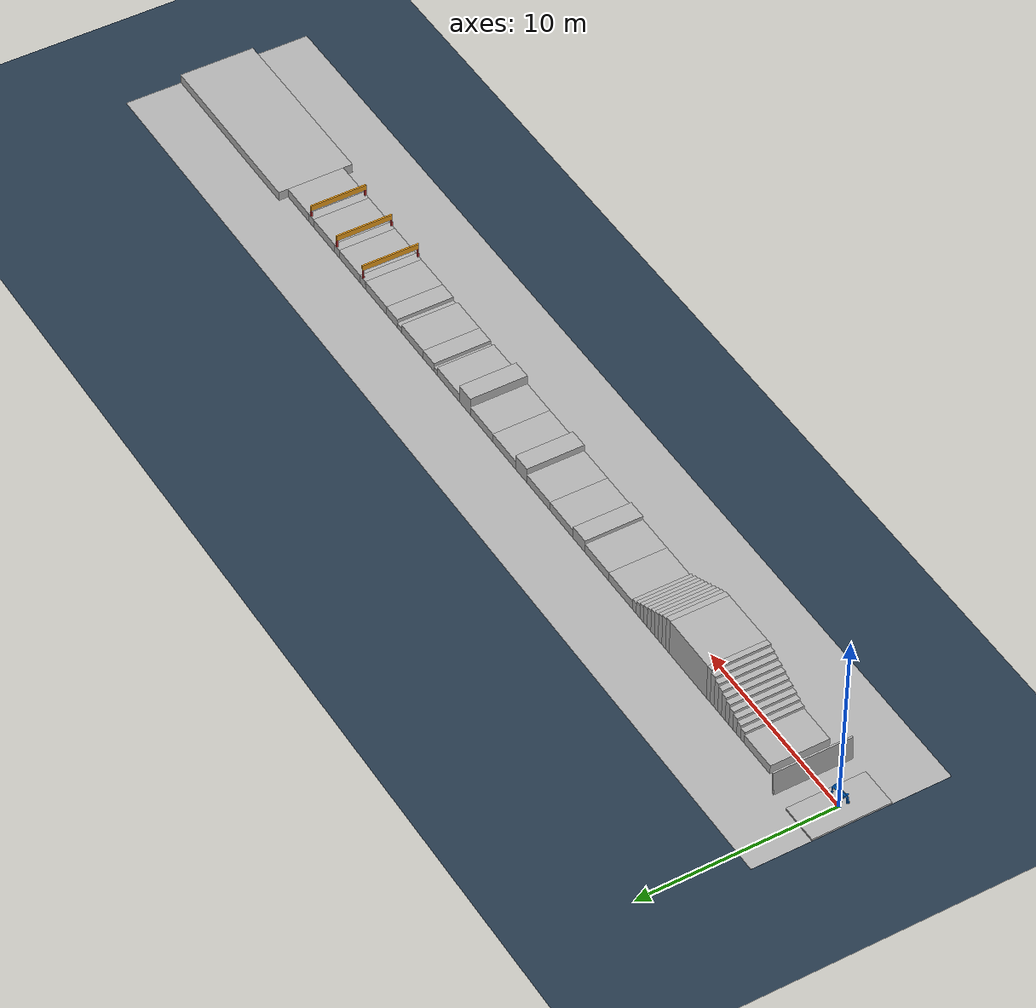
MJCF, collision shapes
<mujoco model="M20">

    <default>
        <default class="robot">
            <default class="motor">
                <joint />
                <motor />
            </default>
            <default class="visual">
                <geom material="default_material" contype="0" conaffinity="0" group="2" />
            </default>
            <default class="collision">
                <geom material="collision_material" condim="3" contype="1" conaffinity="1" solref="0.005 1" friction="1 0.01 0.001" density="0" group="1" />
                </default>
        </default>
    </default>

    <compiler angle="radian" meshdir="../meshes/" />
    <compiler autolimits="true" />

    <asset>
        <material name="default_material" rgba="0.7 0.7 0.7 1" />
        <material name="collision_material" rgba="0.0 0.4 0.8 0.2" />
        <mesh name="base_link" file="base_link.STL" />
        <mesh name="fl_hipx" file="fl_hipx.STL" />
        <mesh name="fl_hipy" file="fl_hipy.STL" />
        <mesh name="fl_knee" file="fl_knee.STL" />
        <mesh name="fl_wheel" file="fl_wheel.STL" />
        <mesh name="fr_hipx" file="fr_hipx.STL" />
        <mesh name="fr_hipy" file="fr_hipy.STL" />
        <mesh name="fr_knee" file="fr_knee.STL" />
        <mesh name="fr_wheel" file="fr_wheel.STL" />
        <mesh name="hl_hipx" file="hl_hipx.STL" />
        <mesh name="hl_hipy" file="hl_hipy.STL" />
        <mesh name="hl_knee" file="hl_knee.STL" />
        <mesh name="hl_wheel" file="hl_wheel.STL" />
        <mesh name="hr_hipx" file="hr_hipx.STL" />
        <mesh name="hr_hipy" file="hr_hipy.STL" />
        <mesh name="hr_knee" file="hr_knee.STL" />
        <mesh name="hr_wheel" file="hr_wheel.STL" />
        <texture name="texplane" type="2d" builtin="checker" rgb1=".2 .3 .4" rgb2=".1 0.15 0.2" width="512" height="512" />
        <material name="MatPlane" reflectance="0.3" texture="texplane" texrepeat="1 1" texuniform="true" />
    <texture type="skybox" builtin="gradient" rgb1="0.3 0.5 0.7" rgb2="0 0 0" width="512" height="307" />
    <texture name="grid" type="2d" builtin="checker" width="512" height="512" rgb1=".1 .2 .3" rgb2=".2 .3 .4" />
    <material name="grid_mat" texture="grid" texrepeat="1 1" texuniform="true" reflectance=".2" />
    <material name="stone_mat" rgba="0.7 0.7 0.7 1" />
    <material name="rail_mat" rgba="0.8 0.2 0.2 1" />
    <material name="box_mat" rgba="0.3 0.8 0.3 1" />
    <material name="ring_mat" rgba="0.9 0.6 0.1 1" />
  </asset>

    <worldbody>
        <light directional="true" pos="-0.5 0.5 3" dir="0 0 -1" />
        <geom name="floor" pos="0 0 0" size="100 100 .125" type="plane" material="MatPlane" condim="3" friction="1 0.01 0.01" group="0" />

        <body name="base_link" pos="0 0. 1." quat="1 0 0 0" childclass="robot">
            <freejoint name="floating_base" />
            <inertial pos="0.00355105878308153 0.0016507579200937 -0.00346462146571654" quat="1 0 0 0" mass="15.882" diaginertia="0.087919 0.533522 0.563492" />

            <site name="imu_site" pos="0.0632 -0.0268 0.0435" size="0.005" rgba="1 0 0 1" />
            <site name="base_site" pos="0 0 0" quat="1 0 0 0" />

            <site name="lidar_site_front" pos="0.32028 0 -0.013" quat="0 0 0 1" rgba="1 0 0 1" size="0.01" />

            <site name="lidar_site_rear" pos="-0.32028 0 -0.013" quat="1 0 0 0" rgba="0 1 0 1" size="0.01" />

            <geom type="mesh" mesh="base_link" class="visual" />
            <geom size="0.375 0.045 0.07" type="box" class="collision" />
            <geom size="0.07 0.375" pos="0 0.045 0" quat="0.707107 0 0.707107 0" type="cylinder" class="collision" />
            <geom size="0.07 0.375" pos="0 -0.045 0" quat="0.707107 0 0.707107 0" type="cylinder" class="collision" />

            <body name="fl_hipx" pos="0.3141 0.0685 0">
                <inertial pos="-0.0111893 0.00891693 0.000405666" quat="0.581628 0.481707 0.465607 0.461387" mass="0.259964" diaginertia="0.000374402 0.000286289 0.000179309" />
                <joint name="fl_hipx_joint" pos="0 0 0" axis="-1 0 0" range="-0.436 0.611" actuatorfrcrange="-76.4 76.4" />
                <geom type="mesh" mesh="fl_hipx" class="visual" />
                <geom size="0.048 0.07" pos="0 0.055 0" quat="0.707107 0.707107 0 0" type="cylinder" class="collision" />
                <body name="fl_hipy">
                    <inertial pos="-0.00199375 0.098439 -0.130664" quat="0.6754 -0.0565887 0.0622156 0.73264" mass="2.618" diaginertia="0.0410181 0.0408067 0.00297328" />
                    <joint name="fl_hipy_joint" pos="0 0 0" axis="0 -1 0" range="-2.286 2.583" actuatorfrcrange="-76.4 76.4" />
                    <geom type="mesh" mesh="fl_hipy" class="visual" />
                    <geom size="0.035 0.01 0.125" pos="-0.01 0.11 -0.125" type="box" class="collision" />
                    <geom size="0.05 0.045" pos="0 0.11 -0.25" quat="0.707107 0.707107 0 0" type="cylinder" class="collision" />
                    <body name="fl_knee" pos="0 0.0984 -0.25">
                        <inertial pos="0.00341917 0.00269124 -0.181265" quat="0.633405 -0.0508555 0.0475887 0.77068" mass="1.145" diaginertia="0.0121304 0.0117245 0.000948105" />
                        <joint name="fl_knee_joint" pos="0 0 0" axis="0 -1 0" range="-2.809 2.792" actuatorfrcrange="-76.4 76.4" />
                        <geom type="mesh" mesh="fl_knee" class="visual" />
                        <geom size="0.03 0.0125 0.125" pos="0.015 -0.015 -0.125" type="box" class="collision" />
                        <geom size="0.04 0.05" pos="0 0.02 -0.25" quat="0.707107 0.707107 0 0" type="cylinder" class="collision" />
                        <body name="fl_wheel" pos="0 0.059676 -0.25">
                            <inertial pos="-3.11398e-07 0.000279002 5.70329e-07" quat="0.707107 0 0 0.707107" mass="0.638" diaginertia="0.002853 0.001535 0.001535" />
                            <joint name="fl_wheel_joint" pos="0 0 0" axis="0 -1 0" actuatorfrcrange="-21.6 21.6" />
                            <geom type="mesh" mesh="fl_wheel" class="visual" />
                            <geom size="0.09 0.027" quat="0.707107 0.707107 0 0" type="cylinder" class="collision" />
                        </body>
                    </body>
                </body>
            </body>
            <body name="fr_hipx" pos="0.3141 -0.0685 0">
                <inertial pos="-0.0110901 -0.00875035 0.000521421" quat="0.461387 0.465607 0.481707 0.581628" mass="0.259964" diaginertia="0.000374402 0.000286289 0.000179309" />
                <joint name="fr_hipx_joint" pos="0 0 0" axis="-1 0 0" range="-0.611 0.436" actuatorfrcrange="-76.4 76.4" />
                <geom type="mesh" mesh="fr_hipx" class="visual" />
                <geom size="0.048 0.07" pos="0 -0.055 0" quat="0.707107 0.707107 0 0" type="cylinder" class="collision" />
                <body name="fr_hipy">
                    <inertial pos="-0.00229992 -0.0989709 -0.130925" quat="0.6964 0.0586688 -0.0587886 0.712831" mass="2.618" diaginertia="0.0407542 0.040538 0.00301281" />
                    <joint name="fr_hipy_joint" pos="0 0 0" axis="0 -1 0" range="-2.286 2.583" actuatorfrcrange="-76.4 76.4" />
                    <geom type="mesh" mesh="fr_hipy" class="visual" />
                    <geom size="0.035 0.01 0.125" pos="-0.01 -0.11 -0.125" type="box" class="collision" />
                    <geom size="0.05 0.045" pos="0 -0.11 -0.25" quat="0.707107 0.707107 0 0" type="cylinder" class="collision" />
                    <body name="fr_knee" pos="0 -0.0984 -0.25">
                        <inertial pos="0.00354945 -0.00247884 -0.180089" quat="0.769194 0.0472982 -0.0504711 0.635261" mass="1.145" diaginertia="0.0122564 0.0118448 0.000951718" />
                        <joint name="fr_knee_joint" pos="0 0 0" axis="0 -1 0" range="-2.809 2.792" actuatorfrcrange="-76.4 76.4" />
                        <geom type="mesh" mesh="fr_knee" class="visual" />
                        <geom size="0.03 0.0125 0.125" pos="0.015 0.015 -0.125" type="box" class="collision" />
                        <geom size="0.04 0.05" pos="0 -0.02 -0.25" quat="0.707107 0.707107 0 0" type="cylinder" class="collision" />
                        <body name="fr_wheel" pos="0 -0.059676 -0.25">
                            <inertial pos="-6.47327e-07 -0.000279012 -4.6242e-08" quat="0.707107 0 0 0.707107" mass="0.638" diaginertia="0.002853 0.001535 0.001535" />
                            <joint name="fr_wheel_joint" pos="0 0 0" axis="0 -1 0" actuatorfrcrange="-21.6 21.6" />
                            <geom type="mesh" mesh="fr_wheel" class="visual" />
                            <geom size="0.09 0.027" quat="0.707107 0.707107 0 0" type="cylinder" class="collision" />
                        </body>
                    </body>
                </body>
            </body>
            <body name="hl_hipx" pos="-0.3141 0.0685 0">
                <inertial pos="0.0110901 0.00875014 0.000524884" quat="0.465607 0.461387 0.581628 0.481707" mass="0.259964" diaginertia="0.000374402 0.000286289 0.000179309" />
                <joint name="hl_hipx_joint" pos="0 0 0" axis="-1 0 0" range="-0.436 0.611" actuatorfrcrange="-76.4 76.4" />
                <geom type="mesh" mesh="hl_hipx" class="visual" />
                <geom size="0.048 0.07" pos="0 0.055 0" quat="0.707107 0.707107 0 0" type="cylinder" class="collision" />
                <body name="hl_hipy">
                    <inertial pos="0.00204343 0.0990227 -0.130697" quat="0.750359 -0.0628584 0.0546506 0.655761" mass="2.618" diaginertia="0.0408376 0.0406211 0.00299727" />
                    <joint name="hl_hipy_joint" pos="0 0 0" axis="0 -1 0" range="-2.583 2.286" actuatorfrcrange="-76.4 76.4" />
                    <geom type="mesh" mesh="hl_hipy" class="visual" />
                    <geom size="0.035 0.01 0.125" pos="0.01 0.11 -0.125" type="box" class="collision" />
                    <geom size="0.05 0.045" pos="0 0.11 -0.25" quat="0.707107 0.707107 0 0" type="cylinder" class="collision" />
                    <body name="hl_knee" pos="0 0.0984 -0.25">
                        <inertial pos="-0.00354945 0.00247885 -0.180089" quat="0.769194 -0.0472982 0.0504711 0.635261" mass="1.145" diaginertia="0.0122564 0.0118448 0.000951718" />
                        <joint name="hl_knee_joint" pos="0 0 0" axis="0 -1 0" range="-2.792 2.809" actuatorfrcrange="-76.4 76.4" />
                        <geom type="mesh" mesh="hl_knee" class="visual" />
                        <geom size="0.03 0.0125 0.125" pos="-0.015 0.015 -0.125" type="box" class="collision" />
                        <geom size="0.04 0.05" pos="0 0.02 -0.25" quat="0.707107 0.707107 0 0" type="cylinder" class="collision" />
                        <body name="hl_wheel" pos="0 0.059676 -0.25">
                            <inertial pos="-6.07889e-07 0.000279009 2.1049e-07" quat="0.707107 0 0 0.707107" mass="0.638" diaginertia="0.002853 0.001535 0.001535" />
                            <joint name="hl_wheel_joint" pos="0 0 0" axis="0 -1 0" actuatorfrcrange="-21.6 21.6" />
                            <geom type="mesh" mesh="hl_wheel" class="visual" />
                            <geom size="0.09 0.027" quat="0.707107 0.707107 0 0" type="cylinder" class="collision" />
                        </body>
                    </body>
                </body>
            </body>
            <body name="hr_hipx" pos="-0.3141 -0.0685 0">
                <inertial pos="0.0110902 -0.00875012 0.000524937" quat="0.481707 0.581628 0.461387 0.465607" mass="0.259964" diaginertia="0.000374402 0.000286289 0.000179309" />
                <joint name="hr_hipx_joint" pos="0 0 0" axis="-1 0 0" range="-0.611 0.436" actuatorfrcrange="-76.4 76.4" />
                <geom type="mesh" mesh="hr_hipx" class="visual" />
                <geom size="0.048 0.07" pos="0 -0.055 0" quat="0.707107 0.707107 0 0" type="cylinder" class="collision" />
                <body name="hr_hipy">
                    <inertial pos="0.001992 -0.0983704 -0.130561" quat="0.676694 0.0567616 -0.0621797 0.731435" mass="2.618" diaginertia="0.0410109 0.0408028 0.00297526" />
                    <joint name="hr_hipy_joint" pos="0 0 0" axis="0 -1 0" range="-2.583 2.286" actuatorfrcrange="-76.4 76.4" />
                    <geom type="mesh" mesh="hr_hipy" class="visual" />
                    <geom size="0.035 0.01 0.125" pos="0.01 -0.11 -0.125" type="box" class="collision" />
                    <geom size="0.05 0.045" pos="0 -0.11 -0.25" quat="0.707107 0.707107 0 0" type="cylinder" class="collision" />
                    <body name="hr_knee" pos="0 -0.0984 -0.25">
                        <inertial pos="-0.00341053 -0.00270202 -0.181287" quat="0.63448 0.050937 -0.0475303 0.769793" mass="1.145" diaginertia="0.0121352 0.0117289 0.000948904" />
                        <joint name="hr_knee_joint" pos="0 0 0" axis="0 -1 0" range="-2.792 2.809" actuatorfrcrange="-76.4 76.4" />
                        <geom type="mesh" mesh="hr_knee" class="visual" />
                        <geom size="0.03 0.0125 0.125" pos="-0.015 0.015 -0.125" type="box" class="collision" />
                        <geom size="0.04 0.05" pos="0 -0.02 -0.25" quat="0.707107 0.707107 0 0" type="cylinder" class="collision" />
                        <body name="hr_wheel" pos="0 -0.059676 -0.25">
                            <inertial pos="6.09746e-07 -0.000279009 2.01314e-07" quat="0.707107 0 0 0.707107" mass="0.638" diaginertia="0.002853 0.001535 0.001535" />
                            <joint name="hr_wheel_joint" pos="0 0 0" axis="0 -1 0" actuatorfrcrange="-21.6 21.6" />
                            <geom type="mesh" mesh="hr_wheel" class="visual" />
                            <geom size="0.09 0.027" quat="0.707107 0.707107 0 0" type="cylinder" class="collision" />
                        </body>
                    </body>
                </body>
            </body>
        </body>
    <geom name="abyss_floor" type="plane" size="0 0 0.05" pos="0 0 -5.0" material="grid_mat" condim="3" />
    <geom type="box" pos="0 0 0.060" size="1.0 2.0 0.05" material="stone_mat" name="start_platform" />
    <geom type="box" pos="2.000 0.0 0.210" size="1.031 2.0 0.05" euler="0 -14.036 0" material="stone_mat" name="start_ramp" />
    <geom type="box" pos="4.000 0.0 0.260" size="1.000 1.500 0.250" material="stone_mat" />
    <geom type="box" pos="5.150 0.0 -0.415" size="0.150 1.500 1.075" material="stone_mat" />
    <geom type="box" pos="5.450 0.0 -0.340" size="0.150 1.500 1.150" material="stone_mat" />
    <geom type="box" pos="5.750 0.0 -0.265" size="0.150 1.500 1.225" material="stone_mat" />
    <geom type="box" pos="6.050 0.0 -0.190" size="0.150 1.500 1.300" material="stone_mat" />
    <geom type="box" pos="6.350 0.0 -0.115" size="0.150 1.500 1.375" material="stone_mat" />
    <geom type="box" pos="6.650 0.0 -0.040" size="0.150 1.500 1.450" material="stone_mat" />
    <geom type="box" pos="6.950 0.0 0.035" size="0.150 1.500 1.525" material="stone_mat" />
    <geom type="box" pos="7.250 0.0 0.110" size="0.150 1.500 1.600" material="stone_mat" />
    <geom type="box" pos="7.550 0.0 0.185" size="0.150 1.500 1.675" material="stone_mat" />
    <geom type="box" pos="7.850 0.0 0.260" size="0.150 1.500 1.750" material="stone_mat" />
    <geom type="box" pos="9.500 0.0 0.260" size="1.500 1.500 1.750" material="stone_mat" />
    <geom type="box" pos="11.150 0.0 0.260" size="0.150 1.500 1.750" material="stone_mat" />
    <geom type="box" pos="11.450 0.0 0.185" size="0.150 1.500 1.675" material="stone_mat" />
    <geom type="box" pos="11.750 0.0 0.110" size="0.150 1.500 1.600" material="stone_mat" />
    <geom type="box" pos="12.050 0.0 0.035" size="0.150 1.500 1.525" material="stone_mat" />
    <geom type="box" pos="12.350 0.0 -0.040" size="0.150 1.500 1.450" material="stone_mat" />
    <geom type="box" pos="12.650 0.0 -0.115" size="0.150 1.500 1.375" material="stone_mat" />
    <geom type="box" pos="12.950 0.0 -0.190" size="0.150 1.500 1.300" material="stone_mat" />
    <geom type="box" pos="13.250 0.0 -0.265" size="0.150 1.500 1.225" material="stone_mat" />
    <geom type="box" pos="13.550 0.0 -0.340" size="0.150 1.500 1.150" material="stone_mat" />
    <geom type="box" pos="13.850 0.0 -0.415" size="0.150 1.500 1.075" material="stone_mat" />
    <geom type="box" pos="15.000 0.0 0.260" size="1.000 1.500 0.250" material="stone_mat" />
    <geom type="box" pos="17.000 0.0 0.260" size="1.000 1.500 0.250" material="stone_mat" />
    <geom type="box" pos="18.500 0.0 0.360" size="0.500 1.500 0.350" material="stone_mat" />
    <geom type="box" pos="20.000 0.0 0.260" size="1.000 1.500 0.250" material="stone_mat" />
    <geom type="box" pos="22.000 0.0 0.260" size="1.000 1.500 0.250" material="stone_mat" />
    <geom type="box" pos="23.500 0.0 0.435" size="0.500 1.500 0.425" material="stone_mat" />
    <geom type="box" pos="25.000 0.0 0.260" size="1.000 1.500 0.250" material="stone_mat" />
    <geom type="box" pos="27.000 0.0 0.260" size="1.000 1.500 0.250" material="stone_mat" />
    <geom type="box" pos="28.500 0.0 0.510" size="0.500 1.500 0.500" material="stone_mat" />
    <geom type="box" pos="30.000 0.0 0.260" size="1.000 1.500 0.250" material="stone_mat" />
    <geom type="box" pos="31.150 0.0 0.155" size="0.150 1.500 0.155" material="stone_mat" />
    <geom type="box" pos="31.800 0.0 0.255" size="0.500 1.500 0.255" material="stone_mat" />
    <geom type="box" pos="33.300 0.0 0.260" size="1.000 1.500 0.250" material="stone_mat" />
    <geom type="box" pos="34.500 0.0 0.155" size="0.200 1.500 0.155" material="stone_mat" />
    <geom type="box" pos="35.200 0.0 0.255" size="0.500 1.500 0.255" material="stone_mat" />
    <geom type="box" pos="36.700 0.0 0.260" size="1.000 1.500 0.250" material="stone_mat" />
    <geom type="box" pos="37.950 0.0 0.260" size="0.250 1.500 0.250" material="stone_mat" />
    <geom type="box" pos="37.950 1.460 0.760" size="0.040 0.040 0.250" material="rail_mat" />
    <geom type="box" pos="37.950 -1.460 0.760" size="0.040 0.040 0.250" material="rail_mat" />
    <geom type="box" pos="37.950 0.0 1.160" size="0.040 1.500 0.150" material="ring_mat" />
    <geom type="box" pos="39.200 0.0 0.260" size="1.000 1.500 0.250" material="stone_mat" />
    <geom type="box" pos="40.450 0.0 0.260" size="0.250 1.500 0.250" material="stone_mat" />
    <geom type="box" pos="40.450 1.460 0.710" size="0.040 0.040 0.200" material="rail_mat" />
    <geom type="box" pos="40.450 -1.460 0.710" size="0.040 0.040 0.200" material="rail_mat" />
    <geom type="box" pos="40.450 0.0 1.060" size="0.040 1.500 0.150" material="ring_mat" />
    <geom type="box" pos="41.700 0.0 0.260" size="1.000 1.500 0.250" material="stone_mat" />
    <geom type="box" pos="42.950 0.0 0.260" size="0.250 1.500 0.250" material="stone_mat" />
    <geom type="box" pos="42.950 1.460 0.685" size="0.040 0.040 0.175" material="rail_mat" />
    <geom type="box" pos="42.950 -1.460 0.685" size="0.040 0.040 0.175" material="rail_mat" />
    <geom type="box" pos="42.950 0.0 1.010" size="0.040 1.500 0.150" material="ring_mat" />
    <geom type="box" pos="44.200 0.0 0.260" size="1.000 1.500 0.250" material="stone_mat" />
    <geom type="box" pos="50.200 0.0 0.260" size="5.0 2.0 0.250" material="stone_mat" />
    <geom type="box" pos="27.100 0.0 0.005" size="28.100 5.0 0.005" material="stone_mat" name="unified_floor" />
  </worldbody>

    <actuator>
        <motor name="fl_hipx_joint" joint="fl_hipx_joint" ctrllimited="true" ctrlrange="-76.4 76.4" gear="1" />
        <motor name="fl_hipy_joint" joint="fl_hipy_joint" ctrllimited="true" ctrlrange="-76.4 76.4" gear="1" />
        <motor name="fl_knee_joint" joint="fl_knee_joint" ctrllimited="true" ctrlrange="-76.4 76.4" gear="1" />
        <motor name="fl_wheel_joint" joint="fl_wheel_joint" ctrllimited="true" ctrlrange="-21.6 21.6" gear="1" />
        <motor name="fr_hipx_joint" joint="fr_hipx_joint" ctrllimited="true" ctrlrange="-76.4 76.4" gear="1" />
        <motor name="fr_hipy_joint" joint="fr_hipy_joint" ctrllimited="true" ctrlrange="-76.4 76.4" gear="1" />
        <motor name="fr_knee_joint" joint="fr_knee_joint" ctrllimited="true" ctrlrange="-76.4 76.4" gear="1" />
        <motor name="fr_wheel_joint" joint="fr_wheel_joint" ctrllimited="true" ctrlrange="-21.6 21.6" gear="1" />
        <motor name="hl_hipx_joint" joint="hl_hipx_joint" ctrllimited="true" ctrlrange="-76.4 76.4" gear="1" />
        <motor name="hl_hipy_joint" joint="hl_hipy_joint" ctrllimited="true" ctrlrange="-76.4 76.4" gear="1" />
        <motor name="hl_knee_joint" joint="hl_knee_joint" ctrllimited="true" ctrlrange="-76.4 76.4" gear="1" />
        <motor name="hl_wheel_joint" joint="hl_wheel_joint" ctrllimited="true" ctrlrange="-21.6 21.6" gear="1" />
        <motor name="hr_hipx_joint" joint="hr_hipx_joint" ctrllimited="true" ctrlrange="-76.4 76.4" gear="1" />
        <motor name="hr_hipy_joint" joint="hr_hipy_joint" ctrllimited="true" ctrlrange="-76.4 76.4" gear="1" />
        <motor name="hr_knee_joint" joint="hr_knee_joint" ctrllimited="true" ctrlrange="-76.4 76.4" gear="1" />
        <motor name="hr_wheel_joint" joint="hr_wheel_joint" ctrllimited="true" ctrlrange="-21.6 21.6" gear="1" />
    </actuator>

    <contact>
        <exclude body1="base_link" body2="fl_hipx" />
        <exclude body1="fl_hipx" body2="fl_hipy" />
        <exclude body1="fl_hipy" body2="fl_knee" />
        <exclude body1="fl_knee" body2="fl_wheel" />

        <exclude body1="base_link" body2="fr_hipx" />
        <exclude body1="fr_hipx" body2="fr_hipy" />
        <exclude body1="fr_hipy" body2="fr_knee" />
        <exclude body1="fr_knee" body2="fr_wheel" />

        <exclude body1="base_link" body2="hl_hipx" />
        <exclude body1="hl_hipx" body2="hl_hipy" />
        <exclude body1="hl_hipy" body2="hl_knee" />
        <exclude body1="hl_knee" body2="hl_wheel" />

        <exclude body1="base_link" body2="hr_hipx" />
        <exclude body1="hr_hipx" body2="hr_hipy" />
        <exclude body1="hr_hipy" body2="hr_knee" />
        <exclude body1="hr_knee" body2="hr_wheel" />

    </contact>

    <sensor>
        <framequat name="base_quat" objtype="site" objname="base_site" />
        <accelerometer site="imu_site" />
        <gyro site="imu_site" />

    </sensor>
</mujoco>
